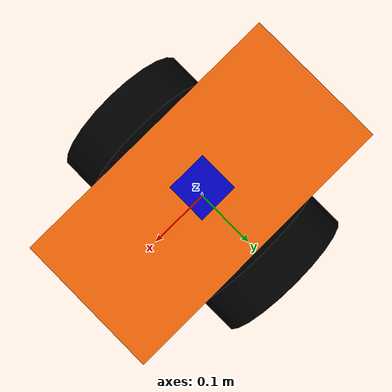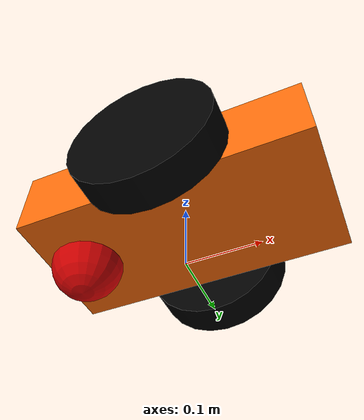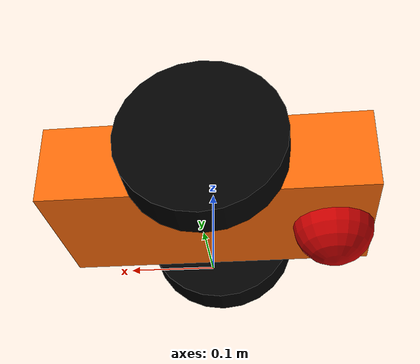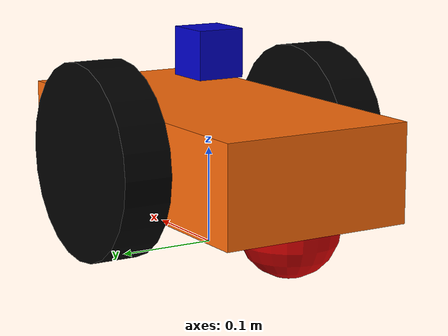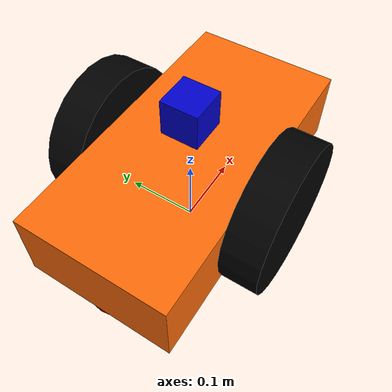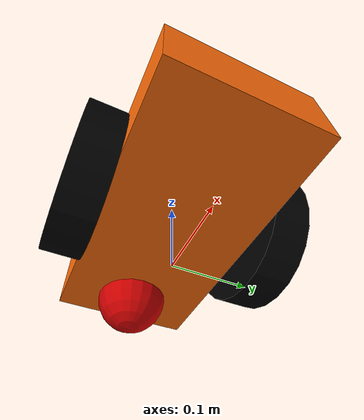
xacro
<?xml version="1.0"?>
<robot name="my_bot" xmlns:xacro="http://www.ros.org/wiki/xacro">
    <!-- the robot description -->
    <xacro:property name="PI" value="3.1415926535897931"/>

    <xacro:property name="chassisHeight" value="0.1"/>
    <xacro:property name="chassisLength" value="0.4"/>
    <xacro:property name="chassisWidth" value="0.2"/>
    <xacro:property name="chassisMass" value="50"/>

    <xacro:property name="casterRadius" value="0.05"/>
    <xacro:property name="casterMass" value="5"/>

    <xacro:property name="wheelWidth" value="0.05"/>
    <xacro:property name="wheelRadius" value="0.1"/>
    <xacro:property name="wheelPos" value="0.2"/>
    <xacro:property name="wheelMass" value="5"/>

    <xacro:property name="cameraSize" value="0.05"/>
    <xacro:property name="cameraMass" value="0.1"/>

    <xacro:include filename="$(find simulation_module)/urdf/my_bot.gazebo"/>
    <xacro:include filename="$(find simulation_module)/urdf/materials.xacro"/>
    <xacro:include filename="$(find simulation_module)/urdf/macros.xacro"/>

    <link name="footprint"/>

    <joint name="base_joint" type="fixed">
        <parent link="footprint"/>
        <child link="chassis"/>
    </joint>

    <link name="chassis">
        <collision>
            <origin xyz="0 0 ${wheelRadius}" rpy="0 0 0"/>
            <geometry>
                <box size="${chassisLength} ${chassisWidth} ${chassisHeight}"/>
            </geometry>
        </collision>

        <visual>
            <origin xyz="0 0 ${wheelRadius}" rpy="0 0 0"/>
            <geometry>
                <box size="${chassisLength} ${chassisWidth} ${chassisHeight}"/>
            </geometry>
            <material name="orange"/>
        </visual>

        <inertial>
            <origin xyz="0 0 ${wheelRadius}" rpy="0 0 0"/>
            <mass value="${chassisMass}"/>
            <xacro:box_inertia m="${chassisMass}" x="${chassisLength}" y="${chassisWidth}" z="${chassisHeight}"/>
        </inertial>
    </link>

    <joint name="fixed" type="fixed">
        <parent link="chassis"/>
        <child link="caster_wheel"/>
    </joint>

    <link name="caster_wheel">
        <collision>
            <origin xyz="${casterRadius-chassisLength/2} 0 ${casterRadius-chassisHeight+wheelRadius}" rpy="0 0 0"/>
            <geometry>
                <sphere radius="${casterRadius}"/>
            </geometry>
        </collision>

        <visual>
            <origin xyz="${casterRadius-chassisLength/2} 0 ${casterRadius-chassisHeight+wheelRadius}" rpy="0 0 0"/>
            <geometry>
                <sphere radius="${casterRadius}"/>
            </geometry>
            <material name="red"/>
        </visual>

        <inertial>
            <origin xyz="${casterRadius-chassisLength/2} 0 ${casterRadius-chassisHeight+wheelRadius}" rpy="0 0 0"/>
            <mass value="${casterMass}"/>
            <xacro:sphere_inertia m="${casterMass}" r="${casterRadius}"/>
        </inertial>
    </link>

    <xacro:wheel lr="left" tY="1"/>
    <xacro:wheel lr="right" tY="-1"/>

    <joint name="camera_joint" type="fixed">
            <axis xyz="0 1 0"/>
            <origin xyz="0 0 0.2" rpy="0 0 0"/>
        <parent link="footprint"/>
        <child link="camera"/>
    </joint>

    <link name="camera">
        <collision>
            <origin xyz="0 0 0" rpy="0 0 0"/>
            <geometry>
                <box size="${cameraSize} ${cameraSize} ${cameraSize}"/>
            </geometry>
        </collision>

        <visual>
            <origin xyz="0 0 0" rpy="0 0 0"/>
            <geometry>
                <box size="${cameraSize} ${cameraSize} ${cameraSize}"/>
            </geometry>
            <material name="blue"/>
        </visual>

        <inertial>
            <mass value="${cameraMass}"/>
            <origin xyz="0 0 0" rpy="0 0 0"/>
            <xacro:box_inertia m="${cameraMass}" x="${cameraSize}" y="${cameraSize}" z="${cameraSize}"/>
        </inertial>

    </link>

</robot>

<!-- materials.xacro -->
<robot>
    <material name="black">
        <color rgba="0.0 0.0 0.0 1.0"/>
    </material>

    <material name="blue">
        <color rgba="0.0 0.0 0.8 1.0"/>
    </material>

    <material name="green">
        <color rgba="0.0 0.8 0.0 1.0"/>
    </material>

    <material name="gray">
        <color rgba="0.2 0.2 0.2 1.0"/>
    </material>

    <material name="orange">
        <color rgba="${255/255} ${108/255} ${10/255} 1.0"/>
    </material>

    <material name="brown">
        <color rgba="${222/255} ${207/255} ${195/255} 1.0"/>
    </material>

    <material name="red">
        <color rgba="0.8 0.0 0.0 1.0"/>
    </material>

    <material name="white">
        <color rgba="1.0 1.0 1.0 1.0"/>
    </material>

</robot>

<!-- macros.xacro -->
<robot name="my_bot" xmlns:xacro="http://www.ros.org/wiki/xacro">

    <xacro:macro name="cylinder_inertia" params="m r h">
        <inertia ixx="${m*(3*r*r+h*h)/12}" ixy="0" ixz="0"
            iyy="${m*(3*r*r+h*h)/12}" iyz="0"
            izz="${m*r*r/2}"
        />
    </xacro:macro>

    <xacro:macro name="box_inertia" params="m x y z">
        <inertia ixx="${m*(y*y+z*z)/12}" ixy="0" ixz="0"
            iyy="${m*(x*x+z*z)/12}" iyz="0"
            izz="${m*(x*x+z*z)/12}"
        />
    </xacro:macro>

    <xacro:macro name="sphere_inertia" params="m r">
        <inertia ixx="${2*m*r*r/5}" ixy="0" ixz="0"
            iyy="${2*m*r*r/5}" iyz="0"
            izz="${2*m*r*r/5}"
        />
    </xacro:macro>

    <xacro:macro name="wheel" params="lr tY">
        <link name="${lr}_wheel">
            <collision>
                <origin xyz="0 0 0" rpy="0 ${PI/2} ${PI/2}"/>
                <geometry>
                    <cylinder length="${wheelWidth}" radius="${wheelRadius}"/>
                </geometry>
            </collision>

            <visual>
                <origin xyz="0 0 0" rpy="0 ${PI/2} ${PI/2}"/>
                <geometry>
                    <cylinder length="${wheelWidth}" radius="${wheelRadius}"/>
                </geometry>
                <material name="black"/>
            </visual>

            <inertial>
                <origin xyz="0 0 0" rpy="0 ${PI/2} ${PI/2}"/>
                <mass value="${wheelMass}"/>
                <xacro:cylinder_inertia m="${wheelMass}" r="${wheelRadius}" h="${wheelWidth}"/>
            </inertial>
        </link>

        <gazebo reference="${lr}_wheel">
            <mu1>1.0</mu1>
            <mu2>1.0</mu2>
            <kp>10000000.0</kp>
            <kd>1.0</kd>
            <fdir1>1 0 0</fdir1>
            <material>Gazebo/Black</material>
        </gazebo>

        <joint name="${lr}_wheel_hinge" type="continuous">
            <parent link="chassis"/>
            <child link="${lr}_wheel"/>
            <origin xyz="${-wheelPos+chassisLength/2} ${tY*wheelWidth/2+tY*chassisWidth/2} ${wheelRadius}" rpy="0 0 0"/>
            <axis xyz="0 1 0" rpy="0 0 0"/>
            <limit effort="100" velocity="100"/>
            <joint_properties damping="0.0" friction="0.0"/>
        </joint>

        <transmission name="${lr}_trans">
            <type>transmission_interface/SimpleTransmission</type>
            <joint name="${lr}_wheel_hinge">
                <hardwareInterface>hardware_interface/EffortJointInterface</hardwareInterface>
            </joint>
            <actuator name="${lr}Motor">
                <hardwareInterface>hardware_interface/EffortJointInterface</hardwareInterface>
                <mechanicalReduction>10</mechanicalReduction>
            </actuator>
        </transmission>
    </xacro:macro>

</robot>
